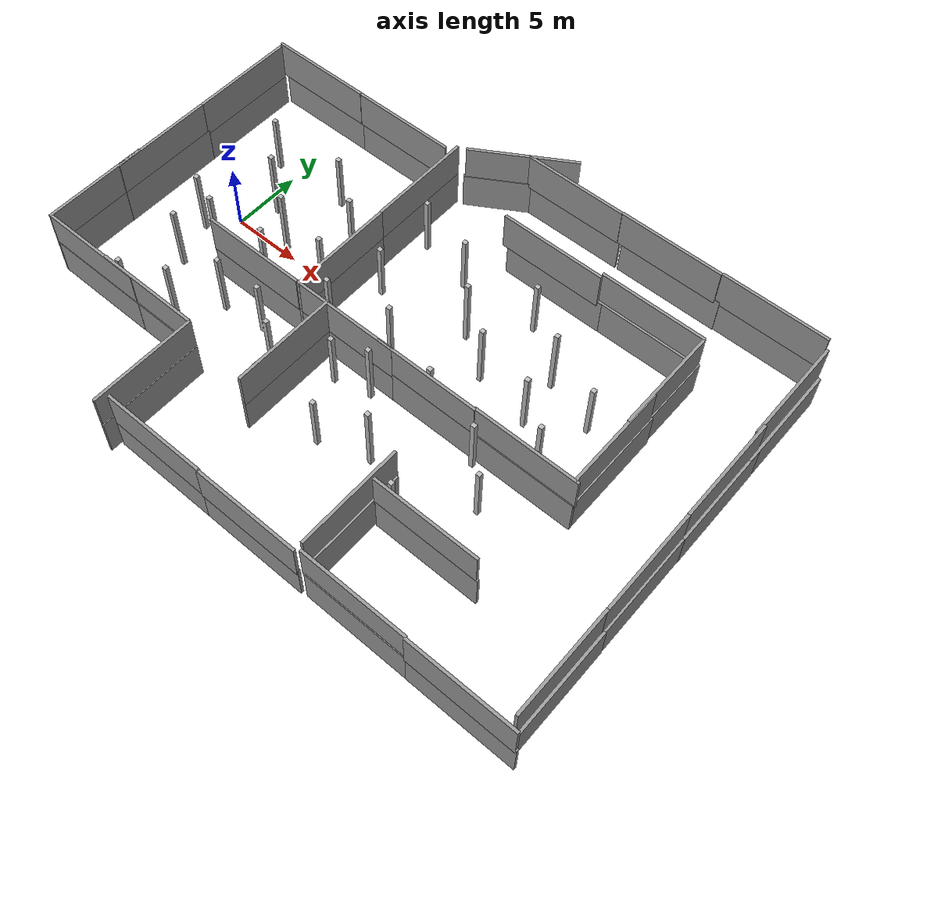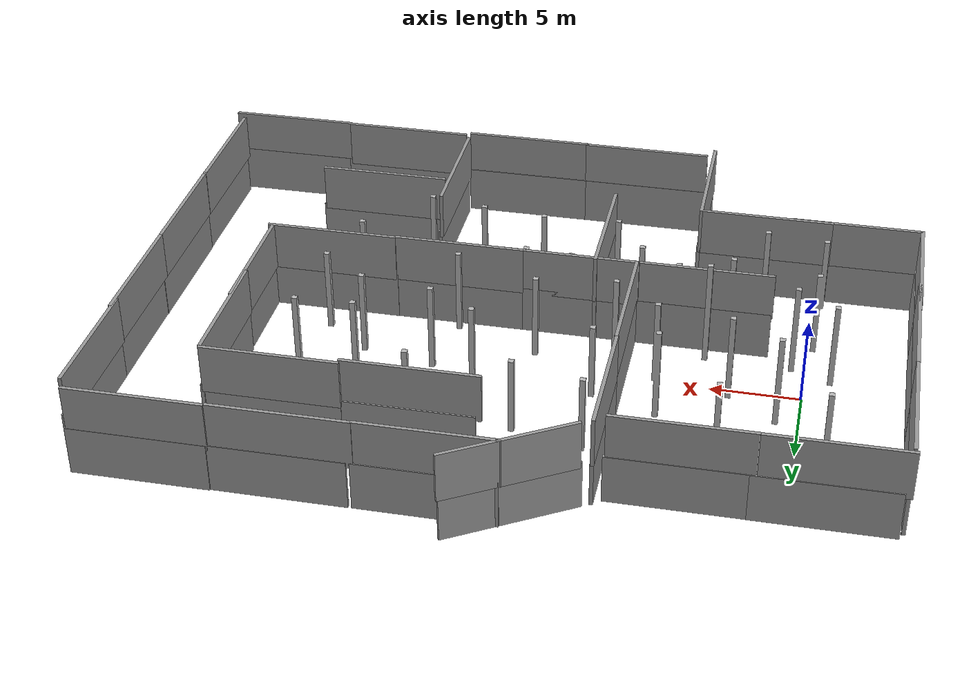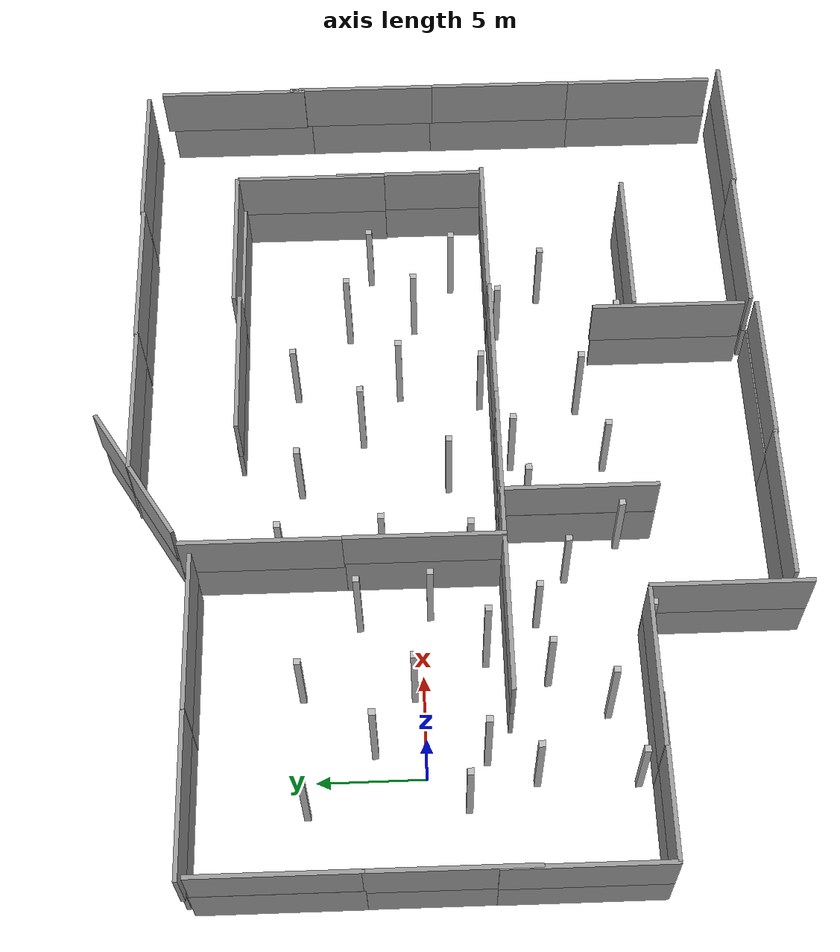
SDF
<sdf version="1.6">
 <world name="world">
  <model name="ground_plane">
   <static>1</static>
   <link name="link">
    <collision name="collision">
     <geometry><plane><normal>0 0 1</normal><size>100 100</size></plane></geometry>
     <surface><friction><ode><mu>100</mu><mu2>50</mu2></ode></friction></surface>
    </collision>
    <velocity_decay><linear>0</linear><angular>0</angular></velocity_decay>
   </link>
  </model>
  <model name="pillars">
   <pose>-3.82158 -2.82314 0 0 -0 0</pose>
   <static>1</static>
   <link name="body">
    <visual name="visual">
     <pose>0 0 -0.001 0 -0 0</pose>
     <geometry><mesh><uri>model://pillars/pillars4.dae</uri><scale>1 1 1</scale></mesh></geometry>
    </visual>
    <collision name="pillars">
     <pose>0 0 -0.001 0 -0 0</pose>
     <geometry><mesh><uri>model://pillars/pillars4.dae</uri><scale>1 1 1</scale></mesh></geometry>
    </collision>
    <velocity_decay><linear>0</linear><angular>0</angular></velocity_decay>
   </link>
  </model>
  <physics name="default_physics" default="0" type="ode">
   <max_step_size>0.001</max_step_size>
   <real_time_factor>1</real_time_factor>
   <real_time_update_rate>1000</real_time_update_rate>
  </physics>
  <scene><ambient>0.4 0.4 0.4 1</ambient><background>0.7 0.7 0.7 1</background><shadows>1</shadows></scene>
  <spherical_coordinates>
   <surface_model>EARTH_WGS84</surface_model>
   <latitude_deg>0</latitude_deg>
   <longitude_deg>0</longitude_deg>
   <elevation>0</elevation>
   <heading_deg>0</heading_deg>
  </spherical_coordinates>
  <gravity>0 0 -9.8</gravity>
  <magnetic_field>6e-06 2.3e-05 -4.2e-05</magnetic_field>
  <atmosphere type="adiabatic"/>
  <model name="grey_wall">
   <static>1</static>
   <link name="link">
    <pose>0 0 1.4 0 -0 0</pose>
    <collision name="collision"><geometry><box><size>7.5 0.2 2.8</size></box></geometry></collision>
    <visual name="visual">
     <cast_shadows>0</cast_shadows>
     <geometry><box><size>7.5 0.2 2.8</size></box></geometry>
     <material>
      <script>
       <uri>model://grey_wall/materials/scripts</uri>
       <uri>model://grey_wall/materials/textures</uri>
       <name>vrc/grey_wall</name>
      </script>
     </material>
    </visual>
   </link>
   <pose>13.5722 -3.83891 0 0 -0 0</pose>
  </model>
  <model name="grey_wall_clone">
   <static>1</static>
   <link name="link">
    <pose>0 0 1.4 0 -0 0</pose>
    <collision name="collision"><geometry><box><size>7.5 0.2 2.8</size></box></geometry></collision>
    <visual name="visual">
     <cast_shadows>0</cast_shadows>
     <geometry><box><size>7.5 0.2 2.8</size></box></geometry>
     <material>
      <script>
       <uri>model://grey_wall/materials/scripts</uri>
       <uri>model://grey_wall/materials/textures</uri>
       <name>vrc/grey_wall</name>
      </script>
     </material>
    </visual>
   </link>
   <pose>13.5722 -3.83891 2.5 0 -0 0</pose>
  </model>
  <model name="grey_wall_clone_clone">
   <static>1</static>
   <link name="link">
    <pose>0 0 1.4 0 -0 0</pose>
    <collision name="collision"><geometry><box><size>7.5 0.2 2.8</size></box></geometry></collision>
    <visual name="visual">
     <cast_shadows>0</cast_shadows>
     <geometry><box><size>7.5 0.2 2.8</size></box></geometry>
     <material>
      <script>
       <uri>model://grey_wall/materials/scripts</uri>
       <uri>model://grey_wall/materials/textures</uri>
       <name>vrc/grey_wall</name>
      </script>
     </material>
    </visual>
   </link>
   <pose>9.726 -0.192574 2.5 0 -0 1.57</pose>
  </model>
  <model name="grey_wall_clone_clone_clone">
   <static>1</static>
   <link name="link">
    <pose>0 0 1.4 0 -0 0</pose>
    <collision name="collision"><geometry><box><size>7.5 0.2 2.8</size></box></geometry></collision>
    <visual name="visual">
     <cast_shadows>0</cast_shadows>
     <geometry><box><size>7.5 0.2 2.8</size></box></geometry>
     <material>
      <script>
       <uri>model://grey_wall/materials/scripts</uri>
       <uri>model://grey_wall/materials/textures</uri>
       <name>vrc/grey_wall</name>
      </script>
     </material>
    </visual>
   </link>
   <pose>9.726 -0.192574 0 0 -0 1.57</pose>
  </model>
  <model name="grey_wall_clone_clone_clone_clone">
   <static>1</static>
   <link name="link">
    <pose>0 0 1.4 0 -0 0</pose>
    <collision name="collision"><geometry><box><size>7.5 0.2 2.8</size></box></geometry></collision>
    <visual name="visual">
     <cast_shadows>0</cast_shadows>
     <geometry><box><size>7.5 0.2 2.8</size></box></geometry>
     <material>
      <script>
       <uri>model://grey_wall/materials/scripts</uri>
       <uri>model://grey_wall/materials/textures</uri>
       <name>vrc/grey_wall</name>
      </script>
     </material>
    </visual>
   </link>
   <pose>9.72423 7.25977 0 0 -0 1.57</pose>
  </model>
  <model name="grey_wall_clone_clone_clone_0">
   <static>1</static>
   <link name="link">
    <pose>0 0 1.4 0 -0 0</pose>
    <collision name="collision"><geometry><box><size>7.5 0.2 2.8</size></box></geometry></collision>
    <visual name="visual">
     <cast_shadows>0</cast_shadows>
     <geometry><box><size>7.5 0.2 2.8</size></box></geometry>
     <material>
      <script>
       <uri>model://grey_wall/materials/scripts</uri>
       <uri>model://grey_wall/materials/textures</uri>
       <name>vrc/grey_wall</name>
      </script>
     </material>
    </visual>
   </link>
   <pose>9.7042 7.30584 2.5 0 -0 1.57</pose>
  </model>
  <model name="grey_wall_clone_0">
   <static>1</static>
   <link name="link">
    <pose>0 0 1.4 0 -0 0</pose>
    <collision name="collision"><geometry><box><size>7.5 0.2 2.8</size></box></geometry></collision>
    <visual name="visual">
     <cast_shadows>0</cast_shadows>
     <geometry><box><size>7.5 0.2 2.8</size></box></geometry>
     <material>
      <script>
       <uri>model://grey_wall/materials/scripts</uri>
       <uri>model://grey_wall/materials/textures</uri>
       <name>vrc/grey_wall</name>
      </script>
     </material>
    </visual>
   </link>
   <pose>5.52403 10.5022 0 0 -0 0</pose>
  </model>
  <model name="grey_wall_clone_clone_0">
   <static>1</static>
   <link name="link">
    <pose>0 0 1.4 0 -0 0</pose>
    <collision name="collision"><geometry><box><size>7.5 0.2 2.8</size></box></geometry></collision>
    <visual name="visual">
     <cast_shadows>0</cast_shadows>
     <geometry><box><size>7.5 0.2 2.8</size></box></geometry>
     <material>
      <script>
       <uri>model://grey_wall/materials/scripts</uri>
       <uri>model://grey_wall/materials/textures</uri>
       <name>vrc/grey_wall</name>
      </script>
     </material>
    </visual>
   </link>
   <pose>5.43048 10.4463 2.5 0 -0 0</pose>
  </model>
  <model name="grey_wall_clone_0_clone">
   <static>1</static>
   <link name="link">
    <pose>0 0 1.4 0 -0 0</pose>
    <collision name="collision"><geometry><box><size>7.5 0.2 2.8</size></box></geometry></collision>
    <visual name="visual">
     <cast_shadows>0</cast_shadows>
     <geometry><box><size>7.5 0.2 2.8</size></box></geometry>
     <material>
      <script>
       <uri>model://grey_wall/materials/scripts</uri>
       <uri>model://grey_wall/materials/textures</uri>
       <name>vrc/grey_wall</name>
      </script>
     </material>
    </visual>
   </link>
   <pose>-1.73699 10.5164 0 0 -0 0</pose>
  </model>
  <model name="grey_wall_clone_clone_0_clone">
   <static>1</static>
   <link name="link">
    <pose>0 0 1.4 0 -0 0</pose>
    <collision name="collision"><geometry><box><size>7.5 0.2 2.8</size></box></geometry></collision>
    <visual name="visual">
     <cast_shadows>0</cast_shadows>
     <geometry><box><size>7.5 0.2 2.8</size></box></geometry>
     <material>
      <script>
       <uri>model://grey_wall/materials/scripts</uri>
       <uri>model://grey_wall/materials/textures</uri>
       <name>vrc/grey_wall</name>
      </script>
     </material>
    </visual>
   </link>
   <pose>-2.10122 10.4554 2.5 0 -0 0</pose>
  </model>
  <model name="grey_wall_clone_clone_clone_clone_clone">
   <static>1</static>
   <link name="link">
    <pose>0 0 1.4 0 -0 0</pose>
    <collision name="collision"><geometry><box><size>7.5 0.2 2.8</size></box></geometry></collision>
    <visual name="visual">
     <cast_shadows>0</cast_shadows>
     <geometry><box><size>7.5 0.2 2.8</size></box></geometry>
     <material>
      <script>
       <uri>model://grey_wall/materials/scripts</uri>
       <uri>model://grey_wall/materials/textures</uri>
       <name>vrc/grey_wall</name>
      </script>
     </material>
    </visual>
   </link>
   <pose>-5.6752 6.4961 0 0 -0 1.57</pose>
  </model>
  <model name="grey_wall_clone_clone_clone_clone_clone_0">
   <static>1</static>
   <link name="link">
    <pose>0 0 1.4 0 -0 0</pose>
    <collision name="collision"><geometry><box><size>7.5 0.2 2.8</size></box></geometry></collision>
    <visual name="visual">
     <cast_shadows>0</cast_shadows>
     <geometry><box><size>7.5 0.2 2.8</size></box></geometry>
     <material>
      <script>
       <uri>model://grey_wall/materials/scripts</uri>
       <uri>model://grey_wall/materials/textures</uri>
       <name>vrc/grey_wall</name>
      </script>
     </material>
    </visual>
   </link>
   <pose>-5.67055 -0.925992 0 0 -0 1.57</pose>
  </model>
  <model name="grey_wall_clone_clone_clone_0_clone">
   <static>1</static>
   <link name="link">
    <pose>0 0 1.4 0 -0 0</pose>
    <collision name="collision"><geometry><box><size>7.5 0.2 2.8</size></box></geometry></collision>
    <visual name="visual">
     <cast_shadows>0</cast_shadows>
     <geometry><box><size>7.5 0.2 2.8</size></box></geometry>
     <material>
      <script>
       <uri>model://grey_wall/materials/scripts</uri>
       <uri>model://grey_wall/materials/textures</uri>
       <name>vrc/grey_wall</name>
      </script>
     </material>
    </visual>
   </link>
   <pose>-5.66781 6.45311 2.5 0 -0 1.57</pose>
  </model>
  <model name="grey_wall_clone_clone_clone_0_clone_0">
   <static>1</static>
   <link name="link">
    <pose>0 0 1.4 0 -0 0</pose>
    <collision name="collision"><geometry><box><size>7.5 0.2 2.8</size></box></geometry></collision>
    <visual name="visual">
     <cast_shadows>0</cast_shadows>
     <geometry><box><size>7.5 0.2 2.8</size></box></geometry>
     <material>
      <script>
       <uri>model://grey_wall/materials/scripts</uri>
       <uri>model://grey_wall/materials/textures</uri>
       <name>vrc/grey_wall</name>
      </script>
     </material>
    </visual>
   </link>
   <pose>-5.67755 -0.915914 2.5 0 -0 1.57</pose>
  </model>
  <model name="grey_wall_clone_clone_clone_clone_clone_0_clone">
   <static>1</static>
   <link name="link">
    <pose>0 0 1.4 0 -0 0</pose>
    <collision name="collision"><geometry><box><size>7.5 0.2 2.8</size></box></geometry></collision>
    <visual name="visual">
     <cast_shadows>0</cast_shadows>
     <geometry><box><size>7.5 0.2 2.8</size></box></geometry>
     <material>
      <script>
       <uri>model://grey_wall/materials/scripts</uri>
       <uri>model://grey_wall/materials/textures</uri>
       <name>vrc/grey_wall</name>
      </script>
     </material>
    </visual>
   </link>
   <pose>-5.69233 -6.58856 0 0 -0 1.57</pose>
  </model>
  <model name="grey_wall_clone_clone_clone_0_clone_0_clone">
   <static>1</static>
   <link name="link">
    <pose>0 0 1.4 0 -0 0</pose>
    <collision name="collision"><geometry><box><size>7.5 0.2 2.8</size></box></geometry></collision>
    <visual name="visual">
     <cast_shadows>0</cast_shadows>
     <geometry><box><size>7.5 0.2 2.8</size></box></geometry>
     <material>
      <script>
       <uri>model://grey_wall/materials/scripts</uri>
       <uri>model://grey_wall/materials/textures</uri>
       <name>vrc/grey_wall</name>
      </script>
     </material>
    </visual>
   </link>
   <pose>-5.7381 -6.56763 2.5 0 -0 1.57</pose>
  </model>
  <model name="grey_wall_clone_0_clone_clone">
   <static>1</static>
   <link name="link">
    <pose>0 0 1.4 0 -0 0</pose>
    <collision name="collision"><geometry><box><size>7.5 0.2 2.8</size></box></geometry></collision>
    <visual name="visual">
     <cast_shadows>0</cast_shadows>
     <geometry><box><size>7.5 0.2 2.8</size></box></geometry>
     <material>
      <script>
       <uri>model://grey_wall/materials/scripts</uri>
       <uri>model://grey_wall/materials/textures</uri>
       <name>vrc/grey_wall</name>
      </script>
     </material>
    </visual>
   </link>
   <pose>5.8738 -3.84512 0 0 -0 0</pose>
  </model>
  <model name="grey_wall_clone_clone_1">
   <static>1</static>
   <link name="link">
    <pose>0 0 1.4 0 -0 0</pose>
    <collision name="collision"><geometry><box><size>7.5 0.2 2.8</size></box></geometry></collision>
    <visual name="visual">
     <cast_shadows>0</cast_shadows>
     <geometry><box><size>7.5 0.2 2.8</size></box></geometry>
     <material>
      <script>
       <uri>model://grey_wall/materials/scripts</uri>
       <uri>model://grey_wall/materials/textures</uri>
       <name>vrc/grey_wall</name>
      </script>
     </material>
    </visual>
   </link>
   <pose>5.81156 -3.84789 2.5 0 -0 0</pose>
  </model>
  <model name="grey_wall_clone_0_clone_clone_clone">
   <static>1</static>
   <link name="link">
    <pose>0 0 1.4 0 -0 0</pose>
    <collision name="collision"><geometry><box><size>7.5 0.2 2.8</size></box></geometry></collision>
    <visual name="visual">
     <cast_shadows>0</cast_shadows>
     <geometry><box><size>7.5 0.2 2.8</size></box></geometry>
     <material>
      <script>
       <uri>model://grey_wall/materials/scripts</uri>
       <uri>model://grey_wall/materials/textures</uri>
       <name>vrc/grey_wall</name>
      </script>
     </material>
    </visual>
   </link>
   <pose>-1.88628 -10.2551 0 0 -0 0</pose>
  </model>
  <model name="grey_wall_clone_0_clone_clone_clone_0">
   <static>1</static>
   <link name="link">
    <pose>0 0 1.4 0 -0 0</pose>
    <collision name="collision"><geometry><box><size>7.5 0.2 2.8</size></box></geometry></collision>
    <visual name="visual">
     <cast_shadows>0</cast_shadows>
     <geometry><box><size>7.5 0.2 2.8</size></box></geometry>
     <material>
      <script>
       <uri>model://grey_wall/materials/scripts</uri>
       <uri>model://grey_wall/materials/textures</uri>
       <name>vrc/grey_wall</name>
      </script>
     </material>
    </visual>
   </link>
   <pose>3.07511 -10.247 0 0 -0 0</pose>
  </model>
  <model name="grey_wall_clone_clone_1_clone">
   <static>1</static>
   <link name="link">
    <pose>0 0 1.4 0 -0 0</pose>
    <collision name="collision"><geometry><box><size>7.5 0.2 2.8</size></box></geometry></collision>
    <visual name="visual">
     <cast_shadows>0</cast_shadows>
     <geometry><box><size>7.5 0.2 2.8</size></box></geometry>
     <material>
      <script>
       <uri>model://grey_wall/materials/scripts</uri>
       <uri>model://grey_wall/materials/textures</uri>
       <name>vrc/grey_wall</name>
      </script>
     </material>
    </visual>
   </link>
   <pose>-1.99118 -10.2312 2.5 0 -0 0</pose>
  </model>
  <model name="grey_wall_clone_clone_1_clone_clone">
   <static>1</static>
   <link name="link">
    <pose>0 0 1.4 0 -0 0</pose>
    <collision name="collision"><geometry><box><size>7.5 0.2 2.8</size></box></geometry></collision>
    <visual name="visual">
     <cast_shadows>0</cast_shadows>
     <geometry><box><size>7.5 0.2 2.8</size></box></geometry>
     <material>
      <script>
       <uri>model://grey_wall/materials/scripts</uri>
       <uri>model://grey_wall/materials/textures</uri>
       <name>vrc/grey_wall</name>
      </script>
     </material>
    </visual>
   </link>
   <pose>3.03557 -10.1922 2.5 0 -0 0</pose>
  </model>
  <model name="grey_wall_clone_clone_clone_clone_clone_0_clone_0">
   <static>1</static>
   <link name="link">
    <pose>0 0 1.4 0 -0 0</pose>
    <collision name="collision"><geometry><box><size>7.5 0.2 2.8</size></box></geometry></collision>
    <visual name="visual">
     <cast_shadows>0</cast_shadows>
     <geometry><box><size>7.5 0.2 2.8</size></box></geometry>
     <material>
      <script>
       <uri>model://grey_wall/materials/scripts</uri>
       <uri>model://grey_wall/materials/textures</uri>
       <name>vrc/grey_wall</name>
      </script>
     </material>
    </visual>
   </link>
   <pose>12.0107 -7.4078 0 0 -0 1.57</pose>
  </model>
  <model name="grey_wall_clone_clone_clone_0_clone_0_clone_0">
   <static>1</static>
   <link name="link">
    <pose>0 0 1.4 0 -0 0</pose>
    <collision name="collision"><geometry><box><size>7.5 0.2 2.8</size></box></geometry></collision>
    <visual name="visual">
     <cast_shadows>0</cast_shadows>
     <geometry><box><size>7.5 0.2 2.8</size></box></geometry>
     <material>
      <script>
       <uri>model://grey_wall/materials/scripts</uri>
       <uri>model://grey_wall/materials/textures</uri>
       <name>vrc/grey_wall</name>
      </script>
     </material>
    </visual>
   </link>
   <pose>12.0233 -7.4059 2.5 0 -0 1.57</pose>
  </model>
  <light name="user_point_light_0" type="point">
   <pose>7.28336 -5.6677 1 0 -0 0</pose>
   <diffuse>0.5 0.5 0.5 1</diffuse>
   <specular>0.1 0.1 0.1 1</specular>
   <attenuation>
    <range>20</range>
    <constant>0.5</constant>
    <linear>0.01</linear>
    <quadratic>0.001</quadratic>
   </attenuation>
   <cast_shadows>0</cast_shadows>
   <direction>0 0 -1</direction>
  </light>
  <model name="grey_wall_clone_0_clone_clone_clone_0_clone">
   <static>1</static>
   <link name="link">
    <pose>0 0 1.4 0 -0 0</pose>
    <collision name="collision"><geometry><box><size>7.5 0.2 2.8</size></box></geometry></collision>
    <visual name="visual">
     <cast_shadows>0</cast_shadows>
     <geometry><box><size>7.5 0.2 2.8</size></box></geometry>
     <material>
      <script>
       <uri>model://grey_wall/materials/scripts</uri>
       <uri>model://grey_wall/materials/textures</uri>
       <name>vrc/grey_wall</name>
      </script>
     </material>
    </visual>
   </link>
   <pose>10.9652 -16.8254 0 0 -0 0</pose>
  </model>
  <model name="grey_wall_clone_clone_1_clone_clone_clone">
   <static>1</static>
   <link name="link">
    <pose>0 0 1.4 0 -0 0</pose>
    <collision name="collision"><geometry><box><size>7.5 0.2 2.8</size></box></geometry></collision>
    <visual name="visual">
     <cast_shadows>0</cast_shadows>
     <geometry><box><size>7.5 0.2 2.8</size></box></geometry>
     <material>
      <script>
       <uri>model://grey_wall/materials/scripts</uri>
       <uri>model://grey_wall/materials/textures</uri>
       <name>vrc/grey_wall</name>
      </script>
     </material>
    </visual>
   </link>
   <pose>10.9906 -16.8458 2.5 0 -0 0</pose>
  </model>
  <model name="grey_wall_clone_clone_clone_clone_clone_0_clone_0_clone">
   <static>1</static>
   <link name="link">
    <pose>0 0 1.4 0 -0 0</pose>
    <collision name="collision"><geometry><box><size>7.5 0.2 2.8</size></box></geometry></collision>
    <visual name="visual">
     <cast_shadows>0</cast_shadows>
     <geometry><box><size>7.5 0.2 2.8</size></box></geometry>
     <material>
      <script>
       <uri>model://grey_wall/materials/scripts</uri>
       <uri>model://grey_wall/materials/textures</uri>
       <name>vrc/grey_wall</name>
      </script>
     </material>
    </visual>
   </link>
   <pose>6.92124 -13.9274 0 0 -0 1.57</pose>
  </model>
  <model name="grey_wall_clone_clone_clone_0_clone_0_clone_0_clone">
   <static>1</static>
   <link name="link">
    <pose>0 0 1.4 0 -0 0</pose>
    <collision name="collision"><geometry><box><size>7.5 0.2 2.8</size></box></geometry></collision>
    <visual name="visual">
     <cast_shadows>0</cast_shadows>
     <geometry><box><size>7.5 0.2 2.8</size></box></geometry>
     <material>
      <script>
       <uri>model://grey_wall/materials/scripts</uri>
       <uri>model://grey_wall/materials/textures</uri>
       <name>vrc/grey_wall</name>
      </script>
     </material>
    </visual>
   </link>
   <pose>6.85747 -13.8976 2.5 0 -0 1.57</pose>
  </model>
  <model name="grey_wall_clone_0_clone_clone_clone_0_clone_clone">
   <static>1</static>
   <link name="link">
    <pose>0 0 1.4 0 -0 0</pose>
    <collision name="collision"><geometry><box><size>7.5 0.2 2.8</size></box></geometry></collision>
    <visual name="visual">
     <cast_shadows>0</cast_shadows>
     <geometry><box><size>7.5 0.2 2.8</size></box></geometry>
     <material>
      <script>
       <uri>model://grey_wall/materials/scripts</uri>
       <uri>model://grey_wall/materials/textures</uri>
       <name>vrc/grey_wall</name>
      </script>
     </material>
    </visual>
   </link>
   <pose>18.339 -16.8254 0 0 -0 0</pose>
  </model>
  <model name="grey_wall_clone_clone_1_clone_clone_clone_clone">
   <static>1</static>
   <link name="link">
    <pose>0 0 1.4 0 -0 0</pose>
    <collision name="collision"><geometry><box><size>7.5 0.2 2.8</size></box></geometry></collision>
    <visual name="visual">
     <cast_shadows>0</cast_shadows>
     <geometry><box><size>7.5 0.2 2.8</size></box></geometry>
     <material>
      <script>
       <uri>model://grey_wall/materials/scripts</uri>
       <uri>model://grey_wall/materials/textures</uri>
       <name>vrc/grey_wall</name>
      </script>
     </material>
    </visual>
   </link>
   <pose>18.3322 -16.8956 2.5 0 -0 0</pose>
  </model>
  <model name="grey_wall_clone_clone_clone_clone_clone_0_clone_0_clone_0">
   <static>1</static>
   <link name="link">
    <pose>0 0 1.4 0 -0 0</pose>
    <collision name="collision"><geometry><box><size>7.5 0.2 2.8</size></box></geometry></collision>
    <visual name="visual">
     <cast_shadows>0</cast_shadows>
     <geometry><box><size>7.5 0.2 2.8</size></box></geometry>
     <material>
      <script>
       <uri>model://grey_wall/materials/scripts</uri>
       <uri>model://grey_wall/materials/textures</uri>
       <name>vrc/grey_wall</name>
      </script>
     </material>
    </visual>
   </link>
   <pose>22.181 -12.6644 0 0 -0 1.57</pose>
  </model>
  <model name="grey_wall_clone_clone_clone_0_clone_0_clone_0_clone_0">
   <static>1</static>
   <link name="link">
    <pose>0 0 1.4 0 -0 0</pose>
    <collision name="collision"><geometry><box><size>7.5 0.2 2.8</size></box></geometry></collision>
    <visual name="visual">
     <cast_shadows>0</cast_shadows>
     <geometry><box><size>7.5 0.2 2.8</size></box></geometry>
     <material>
      <script>
       <uri>model://grey_wall/materials/scripts</uri>
       <uri>model://grey_wall/materials/textures</uri>
       <name>vrc/grey_wall</name>
      </script>
     </material>
    </visual>
   </link>
   <pose>22.0458 -12.5728 2.5 0 -0 1.57</pose>
  </model>
  <model name="grey_wall_clone_1">
   <static>1</static>
   <link name="link">
    <pose>0 0 1.4 0 -0 0</pose>
    <collision name="collision"><geometry><box><size>7.5 0.2 2.8</size></box></geometry></collision>
    <visual name="visual">
     <cast_shadows>0</cast_shadows>
     <geometry><box><size>7.5 0.2 2.8</size></box></geometry>
     <material>
      <script>
       <uri>model://grey_wall/materials/scripts</uri>
       <uri>model://grey_wall/materials/textures</uri>
       <name>vrc/grey_wall</name>
      </script>
     </material>
    </visual>
   </link>
   <pose>19.9134 -3.83819 0 0 -0 0</pose>
  </model>
  <model name="grey_wall_clone_clone_2">
   <static>1</static>
   <link name="link">
    <pose>0 0 1.4 0 -0 0</pose>
    <collision name="collision"><geometry><box><size>7.5 0.2 2.8</size></box></geometry></collision>
    <visual name="visual">
     <cast_shadows>0</cast_shadows>
     <geometry><box><size>7.5 0.2 2.8</size></box></geometry>
     <material>
      <script>
       <uri>model://grey_wall/materials/scripts</uri>
       <uri>model://grey_wall/materials/textures</uri>
       <name>vrc/grey_wall</name>
      </script>
     </material>
    </visual>
   </link>
   <pose>19.8779 -3.83236 2.5 0 -0 0</pose>
  </model>
  <model name="grey_wall_clone_1_clone">
   <static>1</static>
   <link name="link">
    <pose>0 0 1.4 0 -0 0</pose>
    <collision name="collision"><geometry><box><size>7.5 0.2 2.8</size></box></geometry></collision>
    <visual name="visual">
     <cast_shadows>0</cast_shadows>
     <geometry><box><size>7.5 0.2 2.8</size></box></geometry>
     <material>
      <script>
       <uri>model://grey_wall/materials/scripts</uri>
       <uri>model://grey_wall/materials/textures</uri>
       <name>vrc/grey_wall</name>
      </script>
     </material>
    </visual>
   </link>
   <pose>26.1057 -10.8871 0 0 -0 0</pose>
  </model>
  <model name="grey_wall_clone_clone_2_clone">
   <static>1</static>
   <link name="link">
    <pose>0 0 1.4 0 -0 0</pose>
    <collision name="collision"><geometry><box><size>7.5 0.2 2.8</size></box></geometry></collision>
    <visual name="visual">
     <cast_shadows>0</cast_shadows>
     <geometry><box><size>7.5 0.2 2.8</size></box></geometry>
     <material>
      <script>
       <uri>model://grey_wall/materials/scripts</uri>
       <uri>model://grey_wall/materials/textures</uri>
       <name>vrc/grey_wall</name>
      </script>
     </material>
    </visual>
   </link>
   <pose>26.0114 -10.8846 2.5 0 -0 0</pose>
  </model>
  <model name="grey_wall_clone_0_clone_clone_clone_0_clone_clone_clone">
   <static>1</static>
   <link name="link">
    <pose>0 0 1.4 0 -0 0</pose>
    <collision name="collision"><geometry><box><size>7.5 0.2 2.8</size></box></geometry></collision>
    <visual name="visual">
     <cast_shadows>0</cast_shadows>
     <geometry><box><size>7.5 0.2 2.8</size></box></geometry>
     <material>
      <script>
       <uri>model://grey_wall/materials/scripts</uri>
       <uri>model://grey_wall/materials/textures</uri>
       <name>vrc/grey_wall</name>
      </script>
     </material>
    </visual>
   </link>
   <pose>26.1699 -16.7148 0 0 -0 0</pose>
  </model>
  <model name="grey_wall_clone_clone_1_clone_clone_clone_clone_clone">
   <static>1</static>
   <link name="link">
    <pose>0 0 1.4 0 -0 0</pose>
    <collision name="collision"><geometry><box><size>7.5 0.2 2.8</size></box></geometry></collision>
    <visual name="visual">
     <cast_shadows>0</cast_shadows>
     <geometry><box><size>7.5 0.2 2.8</size></box></geometry>
     <material>
      <script>
       <uri>model://grey_wall/materials/scripts</uri>
       <uri>model://grey_wall/materials/textures</uri>
       <name>vrc/grey_wall</name>
      </script>
     </material>
    </visual>
   </link>
   <pose>26.0239 -16.6483 2.5 0 -0 0</pose>
  </model>
  <model name="grey_wall_clone_0_clone_clone_clone_0_clone_clone_clone_clone">
   <static>1</static>
   <link name="link">
    <pose>0 0 1.4 0 -0 0</pose>
    <collision name="collision"><geometry><box><size>7.5 0.2 2.8</size></box></geometry></collision>
    <visual name="visual">
     <cast_shadows>0</cast_shadows>
     <geometry><box><size>7.5 0.2 2.8</size></box></geometry>
     <material>
      <script>
       <uri>model://grey_wall/materials/scripts</uri>
       <uri>model://grey_wall/materials/textures</uri>
       <name>vrc/grey_wall</name>
      </script>
     </material>
    </visual>
   </link>
   <pose>33.5484 -16.7279 0 0 -0 0</pose>
  </model>
  <model name="grey_wall_clone_clone_1_clone_clone_clone_clone_clone_clone">
   <static>1</static>
   <link name="link">
    <pose>0 0 1.4 0 -0 0</pose>
    <collision name="collision"><geometry><box><size>7.5 0.2 2.8</size></box></geometry></collision>
    <visual name="visual">
     <cast_shadows>0</cast_shadows>
     <geometry><box><size>7.5 0.2 2.8</size></box></geometry>
     <material>
      <script>
       <uri>model://grey_wall/materials/scripts</uri>
       <uri>model://grey_wall/materials/textures</uri>
       <name>vrc/grey_wall</name>
      </script>
     </material>
    </visual>
   </link>
   <pose>33.4635 -16.7332 2.5 0 -0 0</pose>
  </model>
  <model name="grey_wall_clone_clone_clone_clone_clone_0_clone_0_clone_0_clone">
   <static>1</static>
   <link name="link">
    <pose>0 0 1.4 0 -0 0</pose>
    <collision name="collision"><geometry><box><size>7.5 0.2 2.8</size></box></geometry></collision>
    <visual name="visual">
     <cast_shadows>0</cast_shadows>
     <geometry><box><size>7.5 0.2 2.8</size></box></geometry>
     <material>
      <script>
       <uri>model://grey_wall/materials/scripts</uri>
       <uri>model://grey_wall/materials/textures</uri>
       <name>vrc/grey_wall</name>
      </script>
     </material>
    </visual>
   </link>
   <pose>36.7704 -12.4742 0 0 -0 1.57</pose>
  </model>
  <model name="grey_wall_clone_clone_clone_0_clone_0_clone_0_clone_0_clone">
   <static>1</static>
   <link name="link">
    <pose>0 0 1.4 0 -0 0</pose>
    <collision name="collision"><geometry><box><size>7.5 0.2 2.8</size></box></geometry></collision>
    <visual name="visual">
     <cast_shadows>0</cast_shadows>
     <geometry><box><size>7.5 0.2 2.8</size></box></geometry>
     <material>
      <script>
       <uri>model://grey_wall/materials/scripts</uri>
       <uri>model://grey_wall/materials/textures</uri>
       <name>vrc/grey_wall</name>
      </script>
     </material>
    </visual>
   </link>
   <pose>36.5808 -12.3883 2.5 0 -0 1.57</pose>
  </model>
  <model name="grey_wall_clone_clone_clone_clone_clone_0_clone_0_clone_0_clone_0">
   <static>1</static>
   <link name="link">
    <pose>0 0 1.4 0 -0 0</pose>
    <collision name="collision"><geometry><box><size>7.5 0.2 2.8</size></box></geometry></collision>
    <visual name="visual">
     <cast_shadows>0</cast_shadows>
     <geometry><box><size>7.5 0.2 2.8</size></box></geometry>
     <material>
      <script>
       <uri>model://grey_wall/materials/scripts</uri>
       <uri>model://grey_wall/materials/textures</uri>
       <name>vrc/grey_wall</name>
      </script>
     </material>
    </visual>
   </link>
   <pose>36.7467 -5.01666 0 0 -0 1.57</pose>
  </model>
  <model name="grey_wall_clone_clone_clone_clone_clone_0_clone_0_clone_0_clone_1">
   <static>1</static>
   <link name="link">
    <pose>0 0 1.4 0 -0 0</pose>
    <collision name="collision"><geometry><box><size>7.5 0.2 2.8</size></box></geometry></collision>
    <visual name="visual">
     <cast_shadows>0</cast_shadows>
     <geometry><box><size>7.5 0.2 2.8</size></box></geometry>
     <material>
      <script>
       <uri>model://grey_wall/materials/scripts</uri>
       <uri>model://grey_wall/materials/textures</uri>
       <name>vrc/grey_wall</name>
      </script>
     </material>
    </visual>
   </link>
   <pose>36.7735 2.25472 0 0 -0 1.57</pose>
  </model>
  <model name="grey_wall_clone_clone_clone_clone_clone_0_clone_0_clone_0_clone_2">
   <static>1</static>
   <link name="link">
    <pose>0 0 1.4 0 -0 0</pose>
    <collision name="collision"><geometry><box><size>7.5 0.2 2.8</size></box></geometry></collision>
    <visual name="visual">
     <cast_shadows>0</cast_shadows>
     <geometry><box><size>7.5 0.2 2.8</size></box></geometry>
     <material>
      <script>
       <uri>model://grey_wall/materials/scripts</uri>
       <uri>model://grey_wall/materials/textures</uri>
       <name>vrc/grey_wall</name>
      </script>
     </material>
    </visual>
   </link>
   <pose>36.766 8.89985 0 0 -0 1.57</pose>
  </model>
  <model name="grey_wall_clone_clone_clone_0_clone_0_clone_0_clone_0_clone_clone">
   <static>1</static>
   <link name="link">
    <pose>0 0 1.4 0 -0 0</pose>
    <collision name="collision"><geometry><box><size>7.5 0.2 2.8</size></box></geometry></collision>
    <visual name="visual">
     <cast_shadows>0</cast_shadows>
     <geometry><box><size>7.5 0.2 2.8</size></box></geometry>
     <material>
      <script>
       <uri>model://grey_wall/materials/scripts</uri>
       <uri>model://grey_wall/materials/textures</uri>
       <name>vrc/grey_wall</name>
      </script>
     </material>
    </visual>
   </link>
   <pose>36.5981 -5.12794 2.5 0 -0 1.57</pose>
  </model>
  <model name="grey_wall_clone_clone_clone_0_clone_0_clone_0_clone_0_clone_clone_0">
   <static>1</static>
   <link name="link">
    <pose>0 0 1.4 0 -0 0</pose>
    <collision name="collision"><geometry><box><size>7.5 0.2 2.8</size></box></geometry></collision>
    <visual name="visual">
     <cast_shadows>0</cast_shadows>
     <geometry><box><size>7.5 0.2 2.8</size></box></geometry>
     <material>
      <script>
       <uri>model://grey_wall/materials/scripts</uri>
       <uri>model://grey_wall/materials/textures</uri>
       <name>vrc/grey_wall</name>
      </script>
     </material>
    </visual>
   </link>
   <pose>36.5932 2.35798 2.5 0 -0 1.57</pose>
  </model>
  <model name="grey_wall_clone_clone_clone_0_clone_0_clone_0_clone_0_clone_clone_1">
   <static>1</static>
   <link name="link">
    <pose>0 0 1.4 0 -0 0</pose>
    <collision name="collision"><geometry><box><size>7.5 0.2 2.8</size></box></geometry></collision>
    <visual name="visual">
     <cast_shadows>0</cast_shadows>
     <geometry><box><size>7.5 0.2 2.8</size></box></geometry>
     <material>
      <script>
       <uri>model://grey_wall/materials/scripts</uri>
       <uri>model://grey_wall/materials/textures</uri>
       <name>vrc/grey_wall</name>
      </script>
     </material>
    </visual>
   </link>
   <pose>36.5068 9.13269 2.5 0 -0 1.57</pose>
  </model>
  <model name="grey_wall_clone_1_clone_0">
   <static>1</static>
   <link name="link">
    <pose>0 0 1.4 0 -0 0</pose>
    <collision name="collision"><geometry><box><size>7.5 0.2 2.8</size></box></geometry></collision>
    <visual name="visual">
     <cast_shadows>0</cast_shadows>
     <geometry><box><size>7.5 0.2 2.8</size></box></geometry>
     <material>
      <script>
       <uri>model://grey_wall/materials/scripts</uri>
       <uri>model://grey_wall/materials/textures</uri>
       <name>vrc/grey_wall</name>
      </script>
     </material>
    </visual>
   </link>
   <pose>27.1784 -3.8213 0 0 -0 0</pose>
  </model>
  <model name="grey_wall_clone_clone_2_clone_0">
   <static>1</static>
   <link name="link">
    <pose>0 0 1.4 0 -0 0</pose>
    <collision name="collision"><geometry><box><size>7.5 0.2 2.8</size></box></geometry></collision>
    <visual name="visual">
     <cast_shadows>0</cast_shadows>
     <geometry><box><size>7.5 0.2 2.8</size></box></geometry>
     <material>
      <script>
       <uri>model://grey_wall/materials/scripts</uri>
       <uri>model://grey_wall/materials/textures</uri>
       <name>vrc/grey_wall</name>
      </script>
     </material>
    </visual>
   </link>
   <pose>27.2363 -3.76144 2.5 0 -0 0</pose>
  </model>
  <model name="grey_wall_clone_clone_clone_clone_clone_0_clone_0_clone_0_clone_3">
   <static>1</static>
   <link name="link">
    <pose>0 0 1.4 0 -0 0</pose>
    <collision name="collision"><geometry><box><size>7.5 0.2 2.8</size></box></geometry></collision>
    <visual name="visual">
     <cast_shadows>0</cast_shadows>
     <geometry><box><size>7.5 0.2 2.8</size></box></geometry>
     <material>
      <script>
       <uri>model://grey_wall/materials/scripts</uri>
       <uri>model://grey_wall/materials/textures</uri>
       <name>vrc/grey_wall</name>
      </script>
     </material>
    </visual>
   </link>
   <pose>30.814 0.065366 0 0 -0 1.57</pose>
  </model>
  <model name="grey_wall_clone_clone_clone_clone_clone_0_clone_0_clone_0_clone_4">
   <static>1</static>
   <link name="link">
    <pose>0 0 1.4 0 -0 0</pose>
    <collision name="collision"><geometry><box><size>7.5 0.2 2.8</size></box></geometry></collision>
    <visual name="visual">
     <cast_shadows>0</cast_shadows>
     <geometry><box><size>7.5 0.2 2.8</size></box></geometry>
     <material>
      <script>
       <uri>model://grey_wall/materials/scripts</uri>
       <uri>model://grey_wall/materials/textures</uri>
       <name>vrc/grey_wall</name>
      </script>
     </material>
    </visual>
   </link>
   <pose>30.7277 5.00437 0 0 -0 1.57</pose>
  </model>
  <model name="grey_wall_clone_clone_clone_0_clone_0_clone_0_clone_1">
   <static>1</static>
   <link name="link">
    <pose>0 0 1.4 0 -0 0</pose>
    <collision name="collision"><geometry><box><size>7.5 0.2 2.8</size></box></geometry></collision>
    <visual name="visual">
     <cast_shadows>0</cast_shadows>
     <geometry><box><size>7.5 0.2 2.8</size></box></geometry>
     <material>
      <script>
       <uri>model://grey_wall/materials/scripts</uri>
       <uri>model://grey_wall/materials/textures</uri>
       <name>vrc/grey_wall</name>
      </script>
     </material>
    </visual>
   </link>
   <pose>30.7033 -0.035155 2.5 0 -0 1.57</pose>
  </model>
  <model name="grey_wall_clone_clone_clone_0_clone_0_clone_0_clone_2">
   <static>1</static>
   <link name="link">
    <pose>0 0 1.4 0 -0 0</pose>
    <collision name="collision"><geometry><box><size>7.5 0.2 2.8</size></box></geometry></collision>
    <visual name="visual">
     <cast_shadows>0</cast_shadows>
     <geometry><box><size>7.5 0.2 2.8</size></box></geometry>
     <material>
      <script>
       <uri>model://grey_wall/materials/scripts</uri>
       <uri>model://grey_wall/materials/textures</uri>
       <name>vrc/grey_wall</name>
      </script>
     </material>
    </visual>
   </link>
   <pose>30.6384 4.99865 2.5 0 -0 1.57</pose>
  </model>
  <model name="grey_wall_clone_1_clone_clone">
   <static>1</static>
   <link name="link">
    <pose>0 0 1.4 0 -0 0</pose>
    <collision name="collision"><geometry><box><size>7.5 0.2 2.8</size></box></geometry></collision>
    <visual name="visual">
     <cast_shadows>0</cast_shadows>
     <geometry><box><size>7.5 0.2 2.8</size></box></geometry>
     <material>
      <script>
       <uri>model://grey_wall/materials/scripts</uri>
       <uri>model://grey_wall/materials/textures</uri>
       <name>vrc/grey_wall</name>
      </script>
     </material>
    </visual>
   </link>
   <pose>32.5451 13.5944 0 0 -0 0</pose>
  </model>
  <model name="grey_wall_clone_1_clone_clone_0">
   <static>1</static>
   <link name="link">
    <pose>0 0 1.4 0 -0 0</pose>
    <collision name="collision"><geometry><box><size>7.5 0.2 2.8</size></box></geometry></collision>
    <visual name="visual">
     <cast_shadows>0</cast_shadows>
     <geometry><box><size>7.5 0.2 2.8</size></box></geometry>
     <material>
      <script>
       <uri>model://grey_wall/materials/scripts</uri>
       <uri>model://grey_wall/materials/textures</uri>
       <name>vrc/grey_wall</name>
      </script>
     </material>
    </visual>
   </link>
   <pose>25.3238 13.5362 0 0 -0 0</pose>
  </model>
  <model name="grey_wall_clone_1_clone_clone_1">
   <static>1</static>
   <link name="link">
    <pose>0 0 1.4 0 -0 0</pose>
    <collision name="collision"><geometry><box><size>7.5 0.2 2.8</size></box></geometry></collision>
    <visual name="visual">
     <cast_shadows>0</cast_shadows>
     <geometry><box><size>7.5 0.2 2.8</size></box></geometry>
     <material>
      <script>
       <uri>model://grey_wall/materials/scripts</uri>
       <uri>model://grey_wall/materials/textures</uri>
       <name>vrc/grey_wall</name>
      </script>
     </material>
    </visual>
   </link>
   <pose>17.6484 13.518 0 0 -0 0</pose>
  </model>
  <model name="grey_wall_clone_clone_2_clone_0_clone">
   <static>1</static>
   <link name="link">
    <pose>0 0 1.4 0 -0 0</pose>
    <collision name="collision"><geometry><box><size>7.5 0.2 2.8</size></box></geometry></collision>
    <visual name="visual">
     <cast_shadows>0</cast_shadows>
     <geometry><box><size>7.5 0.2 2.8</size></box></geometry>
     <material>
      <script>
       <uri>model://grey_wall/materials/scripts</uri>
       <uri>model://grey_wall/materials/textures</uri>
       <name>vrc/grey_wall</name>
      </script>
     </material>
    </visual>
   </link>
   <pose>32.4604 13.5688 2.5 0 -0 0</pose>
  </model>
  <model name="grey_wall_clone_clone_2_clone_0_clone_0">
   <static>1</static>
   <link name="link">
    <pose>0 0 1.4 0 -0 0</pose>
    <collision name="collision"><geometry><box><size>7.5 0.2 2.8</size></box></geometry></collision>
    <visual name="visual">
     <cast_shadows>0</cast_shadows>
     <geometry><box><size>7.5 0.2 2.8</size></box></geometry>
     <material>
      <script>
       <uri>model://grey_wall/materials/scripts</uri>
       <uri>model://grey_wall/materials/textures</uri>
       <name>vrc/grey_wall</name>
      </script>
     </material>
    </visual>
   </link>
   <pose>24.947 13.4906 2.5 0 -0 0</pose>
  </model>
  <model name="grey_wall_clone_clone_2_clone_0_clone_1">
   <static>1</static>
   <link name="link">
    <pose>0 0 1.4 0 -0 0</pose>
    <collision name="collision"><geometry><box><size>7.5 0.2 2.8</size></box></geometry></collision>
    <visual name="visual">
     <cast_shadows>0</cast_shadows>
     <geometry><box><size>7.5 0.2 2.8</size></box></geometry>
     <material>
      <script>
       <uri>model://grey_wall/materials/scripts</uri>
       <uri>model://grey_wall/materials/textures</uri>
       <name>vrc/grey_wall</name>
      </script>
     </material>
    </visual>
   </link>
   <pose>17.5123 13.4523 2.5 0 -0 0</pose>
  </model>
  <model name="grey_wall_clone_1_clone_clone_2_clone">
   <static>1</static>
   <link name="link">
    <pose>0 0 1.4 0 -0 0</pose>
    <collision name="collision"><geometry><box><size>7.5 0.2 2.8</size></box></geometry></collision>
    <visual name="visual">
     <cast_shadows>0</cast_shadows>
     <geometry><box><size>7.5 0.2 2.8</size></box></geometry>
     <material>
      <script>
       <uri>model://grey_wall/materials/scripts</uri>
       <uri>model://grey_wall/materials/textures</uri>
       <name>vrc/grey_wall</name>
      </script>
     </material>
    </visual>
   </link>
   <pose>13.3998 13.0991 0 0 -0 0.55</pose>
  </model>
  <model name="grey_wall_clone_1_clone_clone_2_clone_0">
   <static>1</static>
   <link name="link">
    <pose>0 0 1.4 0 -0 0</pose>
    <collision name="collision"><geometry><box><size>7.5 0.2 2.8</size></box></geometry></collision>
    <visual name="visual">
     <cast_shadows>0</cast_shadows>
     <geometry><box><size>7.5 0.2 2.8</size></box></geometry>
     <material>
      <script>
       <uri>model://grey_wall/materials/scripts</uri>
       <uri>model://grey_wall/materials/textures</uri>
       <name>vrc/grey_wall</name>
      </script>
     </material>
    </visual>
   </link>
   <pose>13.4572 13.209 2.5 0 -0 0.55</pose>
  </model>
  <model name="grey_wall_clone_1_clone_0_clone">
   <static>1</static>
   <link name="link">
    <pose>0 0 1.4 0 -0 0</pose>
    <collision name="collision"><geometry><box><size>7.5 0.2 2.8</size></box></geometry></collision>
    <visual name="visual">
     <cast_shadows>0</cast_shadows>
     <geometry><box><size>7.5 0.2 2.8</size></box></geometry>
     <material>
      <script>
       <uri>model://grey_wall/materials/scripts</uri>
       <uri>model://grey_wall/materials/textures</uri>
       <name>vrc/grey_wall</name>
      </script>
     </material>
    </visual>
   </link>
   <pose>26.9868 8.61492 0 0 -0 0</pose>
  </model>
  <model name="grey_wall_clone_1_clone_0_clone_0">
   <static>1</static>
   <link name="link">
    <pose>0 0 1.4 0 -0 0</pose>
    <collision name="collision"><geometry><box><size>7.5 0.2 2.8</size></box></geometry></collision>
    <visual name="visual">
     <cast_shadows>0</cast_shadows>
     <geometry><box><size>7.5 0.2 2.8</size></box></geometry>
     <material>
      <script>
       <uri>model://grey_wall/materials/scripts</uri>
       <uri>model://grey_wall/materials/textures</uri>
       <name>vrc/grey_wall</name>
      </script>
     </material>
    </visual>
   </link>
   <pose>19.8813 8.59599 0 0 -0 0</pose>
  </model>
  <model name="grey_wall_clone_clone_2_clone_0_clone_2">
   <static>1</static>
   <link name="link">
    <pose>0 0 1.4 0 -0 0</pose>
    <collision name="collision"><geometry><box><size>7.5 0.2 2.8</size></box></geometry></collision>
    <visual name="visual">
     <cast_shadows>0</cast_shadows>
     <geometry><box><size>7.5 0.2 2.8</size></box></geometry>
     <material>
      <script>
       <uri>model://grey_wall/materials/scripts</uri>
       <uri>model://grey_wall/materials/textures</uri>
       <name>vrc/grey_wall</name>
      </script>
     </material>
    </visual>
   </link>
   <pose>26.9348 8.78503 2.5 0 -0 0</pose>
  </model>
  <model name="grey_wall_clone_clone_2_clone_0_clone_3">
   <static>1</static>
   <link name="link">
    <pose>0 0 1.4 0 -0 0</pose>
    <collision name="collision"><geometry><box><size>7.5 0.2 2.8</size></box></geometry></collision>
    <visual name="visual">
     <cast_shadows>0</cast_shadows>
     <geometry><box><size>7.5 0.2 2.8</size></box></geometry>
     <material>
      <script>
       <uri>model://grey_wall/materials/scripts</uri>
       <uri>model://grey_wall/materials/textures</uri>
       <name>vrc/grey_wall</name>
      </script>
     </material>
    </visual>
   </link>
   <pose>19.5591 8.50168 2.5 0 -0 0</pose>
  </model>
  <light name="user_point_light_0_clone" type="point">
   <pose>22.1998 -4.89933 8 0 -0 0</pose>
   <diffuse>0.498039 0.498039 0.498039 1</diffuse>
   <specular>0.0980392 0.0980392 0.0980392 1</specular>
   <direction>0 0 -1</direction>
   <attenuation>
    <range>20</range>
    <constant>0.5</constant>
    <linear>0.01</linear>
    <quadratic>0.001</quadratic>
   </attenuation>
  </light>
  <light name="user_point_light_0_clone_0" type="point">
   <pose>26.1259 -10.288 8 0 -0 0</pose>
   <diffuse>0.498039 0.498039 0.498039 1</diffuse>
   <specular>0.0980392 0.0980392 0.0980392 1</specular>
   <direction>0 0 -1</direction>
   <attenuation>
    <range>20</range>
    <constant>0.5</constant>
    <linear>0.01</linear>
    <quadratic>0.001</quadratic>
   </attenuation>
  </light>
 </world>
</sdf>
